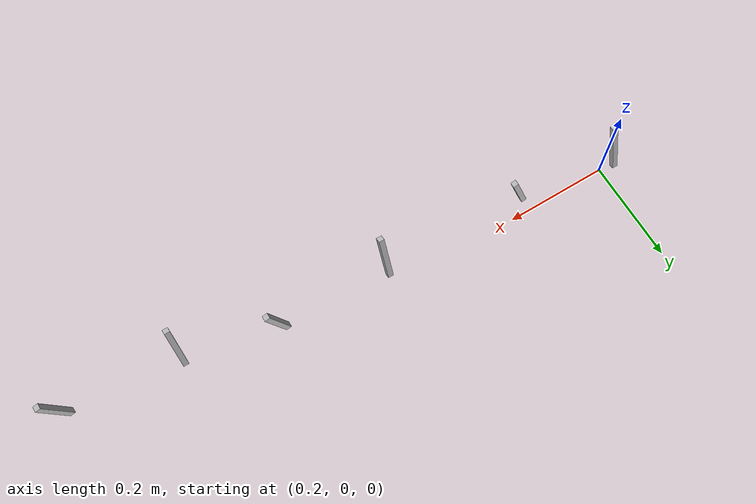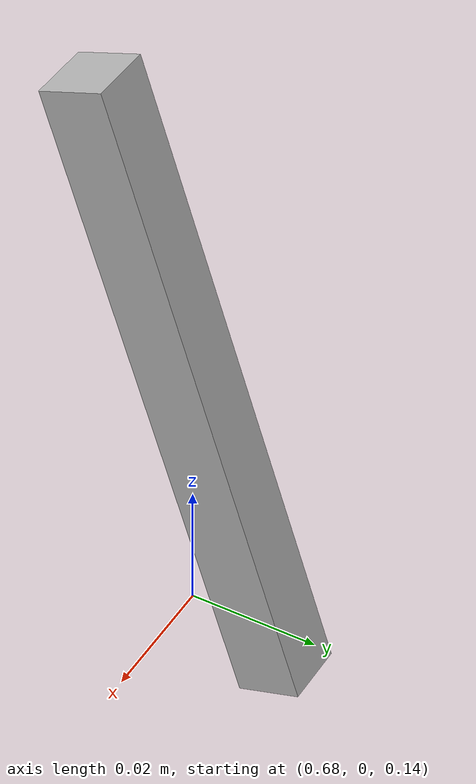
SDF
<?xml version="1.0" ?>
<!-- this file was generated using embedded ruby -->

<sdf version="1.5">
  <world name="default">
    <include>
      <uri>model://sun</uri>
    </include>

    <model name='pendulum_longZ_Xaxis'>
      <pose>0.21000000000000002 0 0.18000000000000002  0.3141592653589793 0.0 0.0</pose>
      <link name="link">
        <pose>0 0 -0.05 0 0 0</pose>
        <inertial>
          <mass>0.027000000000000003</mass>
          <inertia>
            <ixx>2.2725000000000007e-05</ixx>
            <iyy>2.2725000000000007e-05</iyy>
            <izz>4.500000000000001e-07</izz>
            <ixy>0.0</ixy>
            <ixz>0.0</ixz>
            <iyz>0.0</iyz>
          </inertia>
        </inertial>
        <collision name="collision">
          <geometry>
            <box>
              <size>0.01 0.01 0.1</size>
            </box>
          </geometry>
        </collision>
        <visual name="visual">
          <geometry>
            <box>
              <size>0.01 0.01 0.1</size>
            </box>
          </geometry>
        </visual>
      </link>
      <joint name="joint" type="revolute">
        <pose>0 0 0.05 0 0 0</pose>
        <parent>world</parent>
        <child>link</child>
        <axis>
          <xyz>1 0 0</xyz>
        </axis>
      </joint>
    </model>

    <model name='pendulum_longZ_Yaxis'>
      <pose>0.42000000000000004 0 0.18000000000000002  0.0 0.3141592653589793 0.0</pose>
      <link name="link">
        <pose>0 0 -0.05 0 0 0</pose>
        <inertial>
          <mass>0.027000000000000003</mass>
          <inertia>
            <ixx>2.2725000000000007e-05</ixx>
            <iyy>2.2725000000000007e-05</iyy>
            <izz>4.500000000000001e-07</izz>
            <ixy>0.0</ixy>
            <ixz>0.0</ixz>
            <iyz>0.0</iyz>
          </inertia>
        </inertial>
        <collision name="collision">
          <geometry>
            <box>
              <size>0.01 0.01 0.1</size>
            </box>
          </geometry>
        </collision>
        <visual name="visual">
          <geometry>
            <box>
              <size>0.01 0.01 0.1</size>
            </box>
          </geometry>
        </visual>
      </link>
      <joint name="joint" type="revolute">
        <pose>0 0 0.05 0 0 0</pose>
        <parent>world</parent>
        <child>link</child>
        <axis>
          <xyz>0 1 0</xyz>
        </axis>
      </joint>
    </model>

    <model name='pendulum_longX_Xaxis'>
      <pose>0.6300000000000001 0 0.18000000000000002  0.3141592653589793 0.0 0.0</pose>
      <link name="link">
        <pose>0.05 0 0 0 1.5707963267948966 0</pose>
        <inertial>
          <mass>0.027000000000000003</mass>
          <inertia>
            <ixx>4.500000000000001e-07</ixx>
            <iyy>2.2725000000000007e-05</iyy>
            <izz>2.2725000000000007e-05</izz>
            <ixy>0.0</ixy>
            <ixz>0.0</ixz>
            <iyz>0.0</iyz>
          </inertia>
        </inertial>
        <collision name="collision">
          <geometry>
            <box>
              <size>0.1 0.01 0.01</size>
            </box>
          </geometry>
        </collision>
        <visual name="visual">
          <geometry>
            <box>
              <size>0.1 0.01 0.01</size>
            </box>
          </geometry>
        </visual>
      </link>
      <joint name="joint" type="revolute">
        <pose>-0.05 0 0 0 -1.5707963267948966 0</pose>
        <parent>world</parent>
        <child>link</child>
        <axis>
          <xyz>1 0 0</xyz>
        </axis>
      </joint>
    </model>

    <model name='pendulum_longX_Yaxis'>
      <pose>0.8400000000000001 0 0.18000000000000002  0.0 0.3141592653589793 0.0</pose>
      <link name="link">
        <pose>0.05 0 0 0 1.5707963267948966 0</pose>
        <inertial>
          <mass>0.027000000000000003</mass>
          <inertia>
            <ixx>4.500000000000001e-07</ixx>
            <iyy>2.2725000000000007e-05</iyy>
            <izz>2.2725000000000007e-05</izz>
            <ixy>0.0</ixy>
            <ixz>0.0</ixz>
            <iyz>0.0</iyz>
          </inertia>
        </inertial>
        <collision name="collision">
          <geometry>
            <box>
              <size>0.1 0.01 0.01</size>
            </box>
          </geometry>
        </collision>
        <visual name="visual">
          <geometry>
            <box>
              <size>0.1 0.01 0.01</size>
            </box>
          </geometry>
        </visual>
      </link>
      <joint name="joint" type="revolute">
        <pose>-0.05 0 0 0 -1.5707963267948966 0</pose>
        <parent>world</parent>
        <child>link</child>
        <axis>
          <xyz>0 1 0</xyz>
        </axis>
      </joint>
    </model>

    <model name='pendulum_longY_Xaxis'>
      <pose>1.05 0 0.18000000000000002  0.3141592653589793 0.0 0.0</pose>
      <link name="link">
        <pose>0 -0.05 0 1.5707963267948966 0 0</pose>
        <inertial>
          <mass>0.027000000000000003</mass>
          <inertia>
            <ixx>2.2725000000000007e-05</ixx>
            <iyy>4.500000000000001e-07</iyy>
            <izz>2.2725000000000007e-05</izz>
            <ixy>0.0</ixy>
            <ixz>0.0</ixz>
            <iyz>0.0</iyz>
          </inertia>
        </inertial>
        <collision name="collision">
          <geometry>
            <box>
              <size>0.01 0.1 0.01</size>
            </box>
          </geometry>
        </collision>
        <visual name="visual">
          <geometry>
            <box>
              <size>0.01 0.1 0.01</size>
            </box>
          </geometry>
        </visual>
      </link>
      <joint name="joint" type="revolute">
        <pose>0 0.05 0 -1.5707963267948966 0 0</pose>
        <parent>world</parent>
        <child>link</child>
        <axis>
          <xyz>1 0 0</xyz>
        </axis>
      </joint>
    </model>

    <model name='pendulum_longY_Yaxis'>
      <pose>1.2600000000000002 0 0.18000000000000002  0.0 0.3141592653589793 0.0</pose>
      <link name="link">
        <pose>0 -0.05 0 1.5707963267948966 0 0</pose>
        <inertial>
          <mass>0.027000000000000003</mass>
          <inertia>
            <ixx>2.2725000000000007e-05</ixx>
            <iyy>4.500000000000001e-07</iyy>
            <izz>2.2725000000000007e-05</izz>
            <ixy>0.0</ixy>
            <ixz>0.0</ixz>
            <iyz>0.0</iyz>
          </inertia>
        </inertial>
        <collision name="collision">
          <geometry>
            <box>
              <size>0.01 0.1 0.01</size>
            </box>
          </geometry>
        </collision>
        <visual name="visual">
          <geometry>
            <box>
              <size>0.01 0.1 0.01</size>
            </box>
          </geometry>
        </visual>
      </link>
      <joint name="joint" type="revolute">
        <pose>0 0.05 0 -1.5707963267948966 0 0</pose>
        <parent>world</parent>
        <child>link</child>
        <axis>
          <xyz>0 1 0</xyz>
        </axis>
      </joint>
    </model>

  </world>
</sdf>
